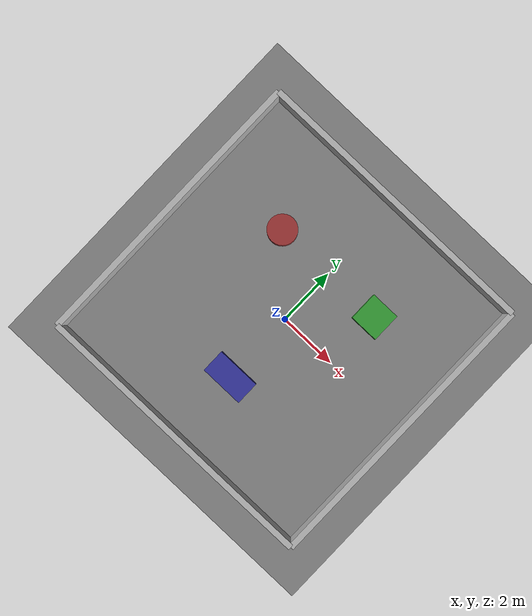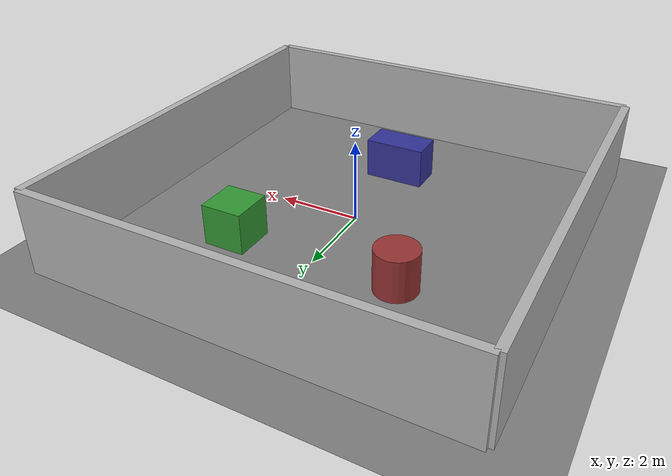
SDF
<?xml version="1.0" ?>
<sdf version="1.8">
  <world name="obstacle_world">
    <physics name="4ms" type="ignored">
      <max_step_size>0.004</max_step_size>
      <real_time_factor>1.0</real_time_factor>
    </physics>

    <plugin filename="gz-sim-physics-system" name="gz::sim::systems::Physics"/>
    <plugin filename="gz-sim-user-commands-system" name="gz::sim::systems::UserCommands"/>
    <plugin filename="gz-sim-scene-broadcaster-system" name="gz::sim::systems::SceneBroadcaster"/>
    <plugin filename="gz-sim-sensors-system" name="gz::sim::systems::Sensors">
      <render_engine>ogre2</render_engine>
    </plugin>

    <!-- Sun -->
    <light type="directional" name="sun">
      <cast_shadows>true</cast_shadows>
      <pose>0 0 10 0 0 0</pose>
      <diffuse>0.8 0.8 0.8 1</diffuse>
      <specular>0.2 0.2 0.2 1</specular>
      <direction>-0.5 0.1 -0.9</direction>
    </light>

    <!-- Ground Plane -->
    <model name="ground_plane">
      <static>true</static>
      <link name="link">
        <collision name="collision">
          <geometry>
            <plane>
              <normal>0 0 1</normal>
              <size>100 100</size>
            </plane>
          </geometry>
        </collision>
        <visual name="visual">
          <geometry>
            <plane>
              <normal>0 0 1</normal>
              <size>100 100</size>
            </plane>
          </geometry>
          <material>
            <ambient>0.5 0.5 0.5 1</ambient>
            <diffuse>0.5 0.5 0.5 1</diffuse>
          </material>
        </visual>
      </link>
    </model>

    <!-- Boundary Walls -->
    <model name="wall_north">
      <static>true</static>
      <pose>0 5 1 0 0 0</pose>
      <link name="link">
        <collision name="col"><geometry><box><size>10 0.2 2</size></box></geometry></collision>
        <visual name="vis">
          <geometry><box><size>10 0.2 2</size></box></geometry>
          <material><ambient>0.7 0.7 0.7 1</ambient><diffuse>0.7 0.7 0.7 1</diffuse></material>
        </visual>
      </link>
    </model>

    <model name="wall_south">
      <static>true</static>
      <pose>0 -5 1 0 0 0</pose>
      <link name="link">
        <collision name="col"><geometry><box><size>10 0.2 2</size></box></geometry></collision>
        <visual name="vis">
          <geometry><box><size>10 0.2 2</size></box></geometry>
          <material><ambient>0.7 0.7 0.7 1</ambient><diffuse>0.7 0.7 0.7 1</diffuse></material>
        </visual>
      </link>
    </model>

    <model name="wall_east">
      <static>true</static>
      <pose>5 0 1 0 0 0</pose>
      <link name="link">
        <collision name="col"><geometry><box><size>0.2 10 2</size></box></geometry></collision>
        <visual name="vis">
          <geometry><box><size>0.2 10 2</size></box></geometry>
          <material><ambient>0.7 0.7 0.7 1</ambient><diffuse>0.7 0.7 0.7 1</diffuse></material>
        </visual>
      </link>
    </model>

    <model name="wall_west">
      <static>true</static>
      <pose>-5 0 1 0 0 0</pose>
      <link name="link">
        <collision name="col"><geometry><box><size>0.2 10 2</size></box></geometry></collision>
        <visual name="vis">
          <geometry><box><size>0.2 10 2</size></box></geometry>
          <material><ambient>0.7 0.7 0.7 1</ambient><diffuse>0.7 0.7 0.7 1</diffuse></material>
        </visual>
      </link>
    </model>

    <!-- Obstacle Cylinders & Boxes -->
    <model name="box_1">
      <static>true</static>
      <pose>2 2 0.5 0 0 0</pose>
      <link name="link">
        <collision name="col"><geometry><box><size>1 1 1</size></box></geometry></collision>
        <visual name="vis">
          <geometry><box><size>1 1 1</size></box></geometry>
          <material><ambient>0.2 0.6 0.2 1</ambient><diffuse>0.2 0.6 0.2 1</diffuse></material>
        </visual>
      </link>
    </model>

    <model name="cylinder_1">
      <static>true</static>
      <pose>-2 2 0.5 0 0 0</pose>
      <link name="link">
        <collision name="col"><geometry><cylinder><radius>0.5</radius><length>1.0</length></cylinder></geometry></collision>
        <visual name="vis">
          <geometry><cylinder><radius>0.5</radius><length>1.0</length></cylinder></geometry>
          <material><ambient>0.6 0.2 0.2 1</ambient><diffuse>0.6 0.2 0.2 1</diffuse></material>
        </visual>
      </link>
    </model>

    <model name="box_2">
      <static>true</static>
      <pose>0 -2.5 0.5 0 0 0</pose>
      <link name="link">
        <collision name="col"><geometry><box><size>1.5 0.8 1</size></box></geometry></collision>
        <visual name="vis">
          <geometry><box><size>1.5 0.8 1</size></box></geometry>
          <material><ambient>0.2 0.2 0.6 1</ambient><diffuse>0.2 0.2 0.6 1</diffuse></material>
        </visual>
      </link>
    </model>

  </world>
</sdf>
